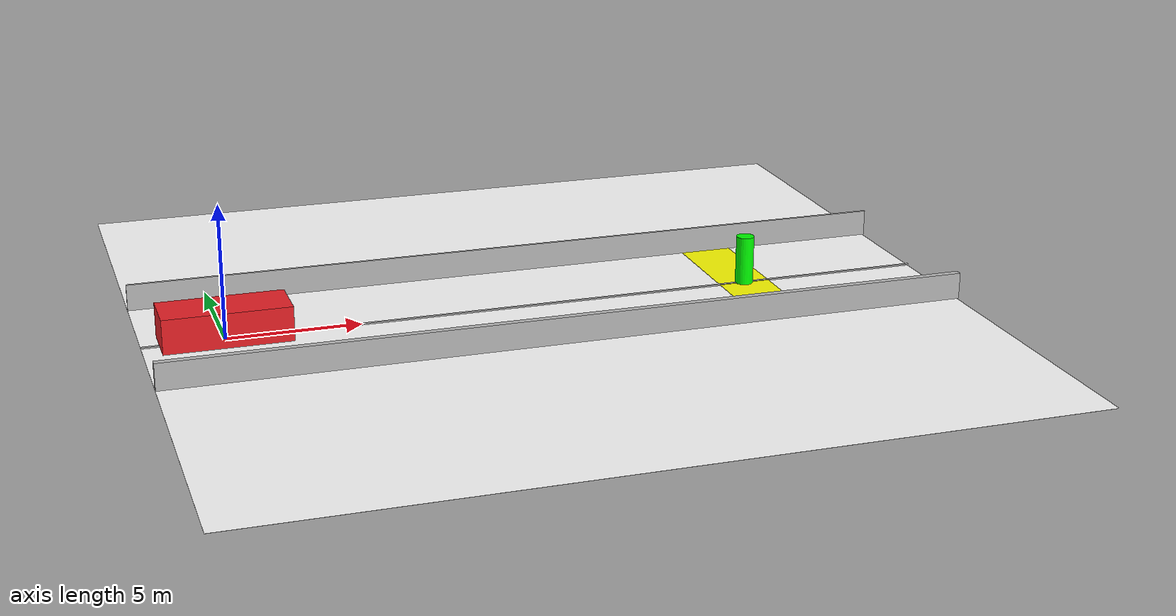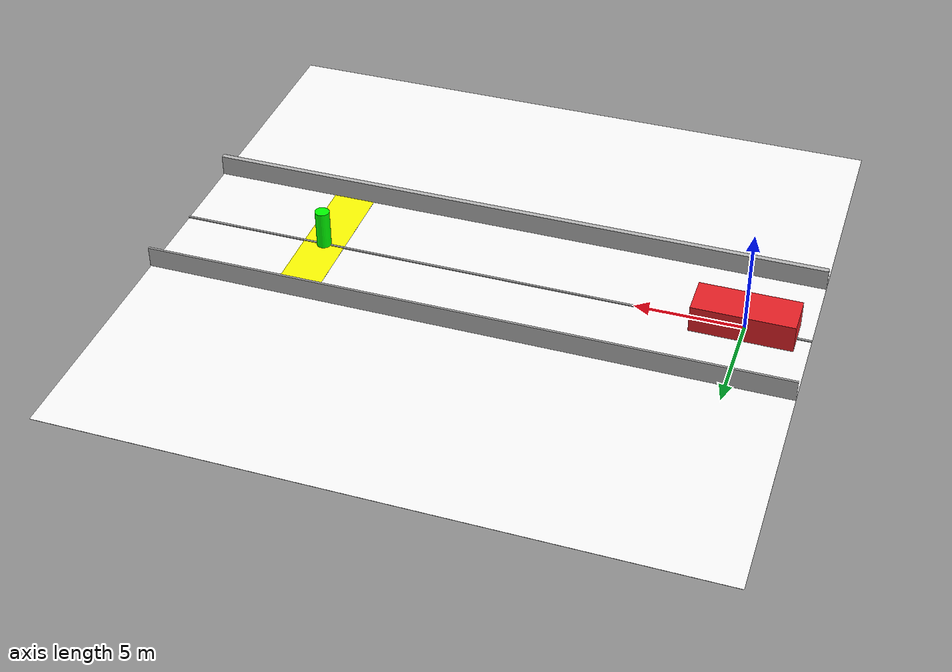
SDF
<?xml version="1.0" ?>
<sdf version='1.6'>
<world name='SKDGen'>

	 <!-- Model of the Robot -->
    <include>
      <uri>model://Car</uri>
      <pose>0 0 0.65 0 0 0</pose>
    </include>

    <!-- Model of the cylinder cup  -->
    <model name="Pedestrian">
      <link name='PedestrianLink'>
          <pose>20 0 0.93 0 -0 0</pose>
          <collision name='PedCollision'>
            <geometry>
              <cylinder>
                <radius>0.34</radius>
                <length>1.86</length>
              </cylinder>
            </geometry>
          </collision>
          <visual name='PedCollision'>
            <geometry>
              <cylinder>
                <radius>0.34</radius>
                <length>1.86</length>
              </cylinder>
            </geometry>
            <material>
              <ambient> 0 1 0 1 </ambient>
            </material>
          </visual>
      </link>
    </model>

    <model name="GoalStrip">
      <link name='GoalStrip'>
          <pose>12 -4 0.5 0 -0 0</pose>
          <visual name='GoalStripVisual'>
            <geometry>
              <box>
                <size>30 0.25 1</size>
              </box>
            </geometry>
            <material>
            </material>
          </visual>
      </link>

      <link name='MidLane'>
          <pose>12 0 0 0 -0 0</pose>
          <visual name='MidLaneVisual'>
            <geometry>
              <box>
                <size>30 0.1 0.05</size>
              </box>
            </geometry>
            <material>
            </material>
          </visual>
      </link>

       <link name='StartingStrip'>
          <pose>12 4 0.5 0 -0 0</pose>
          <visual name='MidLaneVisual'>
            <geometry>
              <box>
                <size>30 0.1 1</size>
              </box>
            </geometry>
            <material>
            </material>
          </visual>
      </link>
    </model>

    <model name="floor">
      <pose frame=''>12 0 -0.05 0 0 0</pose>
      <static>1</static>
      <link name="foorlink">
      <visual name="floorvisual">
        <geometry>
          <box>
            <size>30 30 0.005</size>
          </box>
        </geometry>
        <material>
            <ambient>1 1 1 1.0</ambient>
          </material>
      </visual>
      <collision name="floorcollision">
        <geometry>
          <box>
            <size>20 20 0.005</size>
          </box>
        </geometry>
      </collision>
    </link>
  </model>

    <model name="crossing">
      <pose frame=''>20 0 0 0 0 0</pose>
      <static>1</static>
      <link name="foorlink">
      <visual name="floorvisual">
        <geometry>
          <box>
            <size>2 8 0.005</size>
          </box>
        </geometry>
        <material>
            <ambient>1 1 0 1</ambient>
          </material>
      </visual>
    </link>
  </model>

</world>
</sdf>

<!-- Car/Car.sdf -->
<sdf version='1.6'>
  <model name='Car'>
    <link name="CarLink">
      <pose frame=''>0 0 0 0 0 0</pose>
      <collision name='CarLink_collision'>
        <geometry>
          <box>
            <size>4.68 1.88 1.3</size>
          </box>
        </geometry>
      </collision>
      <visual name='CarLink_visual'>
        <geometry>
          <box>
            <size>4.68 1.88 1.3</size>
          </box>
        </geometry>
        <material>
          <ambient>0.90980392156 0.1294117647 0.15294117647  1.0</ambient>
        </material>
      </visual>
      <gravity>0</gravity>
      <self_collide>0</self_collide>
    </link>
  </model>
</sdf>
